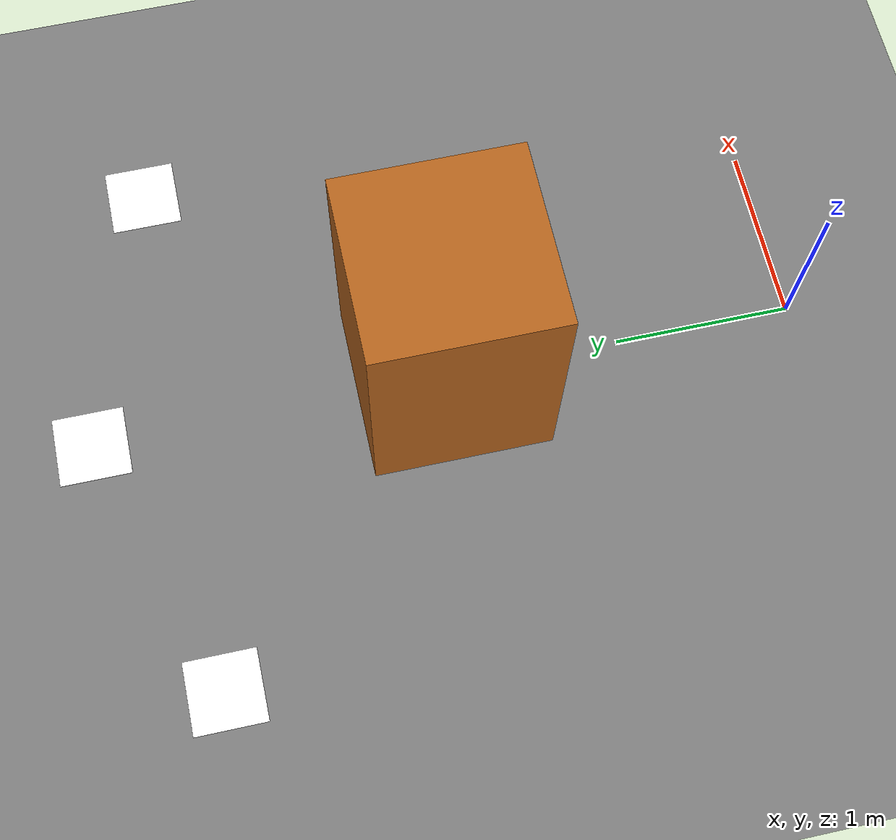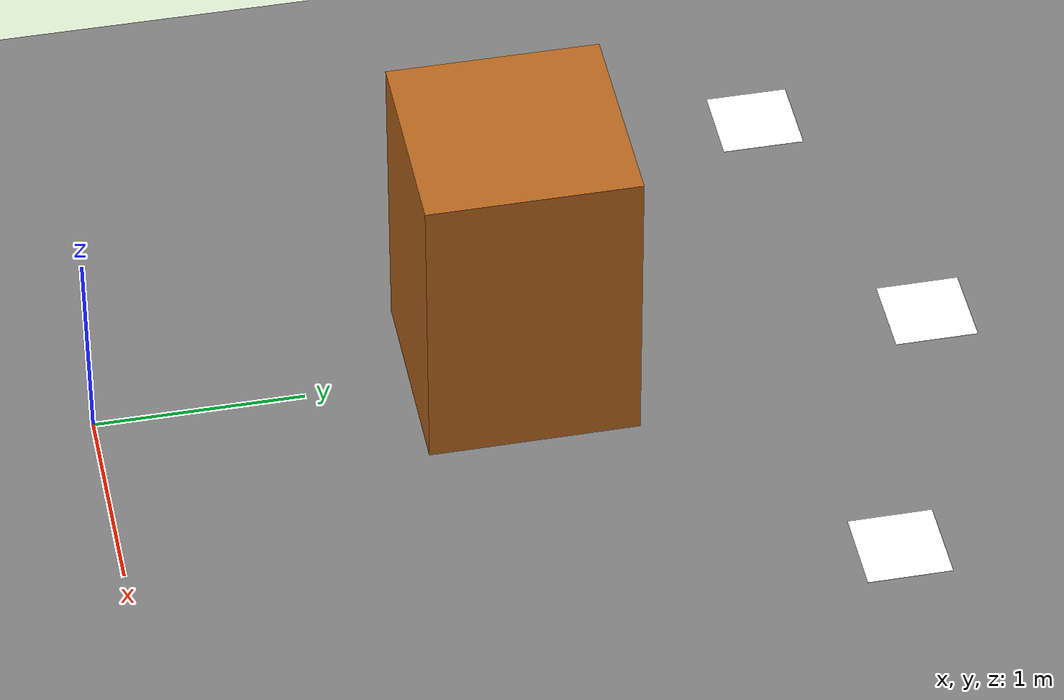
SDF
<?xml version="1.0"?>
<sdf version="1.9">
  <world name="landing_view">

    <plugin filename="gz-sim-physics-system"           name="gz::sim::systems::Physics"/>
    <plugin filename="gz-sim-user-commands-system"     name="gz::sim::systems::UserCommands"/>
    <plugin filename="gz-sim-scene-broadcaster-system" name="gz::sim::systems::SceneBroadcaster"/>
    <plugin filename="gz-sim-sensors-system"           name="gz::sim::systems::Sensors">
      <render_engine>ogre2</render_engine>
    </plugin>
    <plugin filename="gz-sim-imu-system"               name="gz::sim::systems::Imu"/>
    <plugin filename="gz-sim-air-pressure-system"      name="gz::sim::systems::AirPressure"/>
    <plugin filename="gz-sim-air-speed-system"         name="gz::sim::systems::AirSpeed"/>
    <plugin filename="gz-sim-altimeter-system"         name="gz::sim::systems::Altimeter"/>
    <plugin filename="gz-sim-magnetometer-system"      name="gz::sim::systems::Magnetometer"/>
    <plugin filename="gz-sim-navsat-system"            name="gz::sim::systems::NavSat"/>
    <plugin filename="gz-sim-forcetorque-system"       name="gz::sim::systems::ForceTorque"/>
    <plugin filename="gz-sim-contact-system"           name="gz::sim::systems::Contact"/>

    <spherical_coordinates>
      <surface_model>EARTH_WGS84</surface_model>
      <world_frame_orientation>ENU</world_frame_orientation>
      <latitude_deg>47.397971057728974</latitude_deg>
      <longitude_deg>8.546163739800146</longitude_deg>
      <elevation>0</elevation>
    </spherical_coordinates>

    <scene>
      <ambient>0.5 0.5 0.5 1</ambient>
      <background>0.7 0.7 0.75 1</background>
      <grid>false</grid>
    </scene>

    <light type="directional" name="sun">
      <cast_shadows>false</cast_shadows>
      <pose>0 0 10 0 0 0</pose>
      <diffuse>1 1 1 1</diffuse>
      <specular>0.3 0.3 0.3 1</specular>
      <direction>0.2 0.2 -1.0</direction>
    </light>

    <model name="ground_plane">
      <static>true</static>
      <link name="link">
        <collision name="col">
          <geometry><plane><normal>0 0 1</normal><size>100 100</size></plane></geometry>
        </collision>
        <visual name="vis">
          <geometry><plane><normal>0 0 1</normal><size>100 100</size></plane></geometry>
          <material><diffuse>0.5 0.5 0.5 1</diffuse><specular>0.1 0.1 0.1 1</specular></material>
        </visual>
      </link>
    </model>

    <model name="crate">
      <static>true</static>
      <pose>0 2 0.75 0 0 0</pose>
      <link name="link">
        <collision name="col">
          <geometry><box><size>1.0 1.0 1.5</size></box></geometry>
        </collision>
        <visual name="vis">
          <geometry><box><size>1.0 1.0 1.5</size></box></geometry>
          <material>
            <ambient>0.55 0.27 0.07 1</ambient>
            <diffuse>0.72 0.40 0.12 1</diffuse>
            <specular>0.1 0.1 0.1 1</specular>
          </material>
        </visual>
      </link>
    </model>

    <include><uri>model://pad_101</uri><name>pad_101</name><pose>0 4.0 0 0 0 0</pose></include>
    <include><uri>model://pad_100</uri><name>pad_100</name><pose>-1.5 3.5 0 0 0 0</pose></include>
    <include><uri>model://pad_102</uri><name>pad_102</name><pose>1.5 3.5 0 0 0 0</pose></include>

    <model name="overview_cam">
      <static>true</static>
      <pose>0 -3 3.5 0 0.454 1.5707</pose>
      <link name="link">
        <sensor name="camera" type="camera">
          <camera>
            <horizontal_fov>1.3</horizontal_fov>
            <image><width>1280</width><height>720</height><format>R8G8B8</format></image>
            <clip><near>0.1</near><far>100.0</far></clip>
          </camera>
          <always_on>1</always_on>
          <update_rate>10</update_rate>
          <visualize>true</visualize>
        </sensor>
      </link>
    </model>

  </world>
</sdf>

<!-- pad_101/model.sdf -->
<sdf version="1.9">
  <model name="pad_101">
    <!-- SIM-3 aruco id=101, 40cm static plane. Generated by sim/gen_markers.py. -->
    <static>true</static>
    <link name="link">
      <pose>0 0 0.001 0 0 0</pose>
      <visual name="marker_visual">
        <geometry>
          <plane><normal>0 0 1</normal><size>0.4000 0.4000</size></plane>
        </geometry>
        <material>
          <diffuse>1 1 1 1</diffuse>
          <specular>0 0 0 1</specular>
          <pbr>
            <metal>
              <albedo_map>model://pad_101/materials/textures/pad_101.png</albedo_map>
              <metalness>0.0</metalness>
              <roughness>1.0</roughness>
            </metal>
          </pbr>
        </material>
      </visual>
    </link>
  </model>
</sdf>

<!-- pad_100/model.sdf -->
<sdf version="1.9">
  <model name="pad_100">
    <!-- SIM-3 aruco id=100, 40cm static plane. Generated by sim/gen_markers.py. -->
    <static>true</static>
    <link name="link">
      <pose>0 0 0.001 0 0 0</pose>
      <visual name="marker_visual">
        <geometry>
          <plane><normal>0 0 1</normal><size>0.4000 0.4000</size></plane>
        </geometry>
        <material>
          <diffuse>1 1 1 1</diffuse>
          <specular>0 0 0 1</specular>
          <pbr>
            <metal>
              <albedo_map>model://pad_100/materials/textures/pad_100.png</albedo_map>
              <metalness>0.0</metalness>
              <roughness>1.0</roughness>
            </metal>
          </pbr>
        </material>
      </visual>
    </link>
  </model>
</sdf>

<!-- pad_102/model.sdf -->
<sdf version="1.9">
  <model name="pad_102">
    <static>true</static>
    <link name="link">
      <pose>0 0 0.001 0 0 0</pose>
      <visual name="marker_visual">
        <geometry>
          <plane><normal>0 0 1</normal><size>0.4000 0.4000</size></plane>
        </geometry>
        <material>
          <diffuse>1 1 1 1</diffuse>
          <specular>0 0 0 1</specular>
          <pbr>
            <metal>
              <albedo_map>model://pad_102/materials/textures/pad_102.png</albedo_map>
              <metalness>0.0</metalness>
              <roughness>1.0</roughness>
            </metal>
          </pbr>
        </material>
      </visual>
    </link>
  </model>
</sdf>
